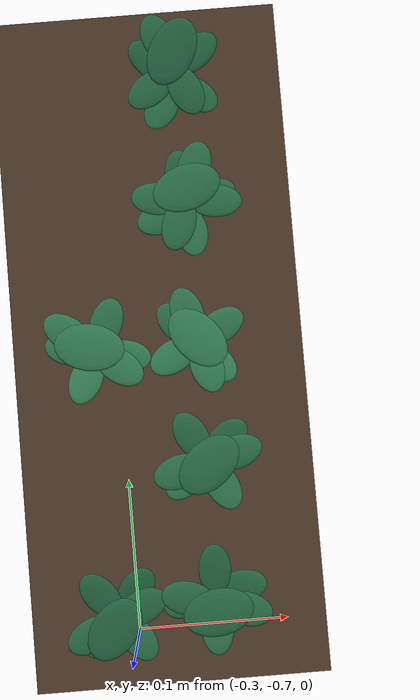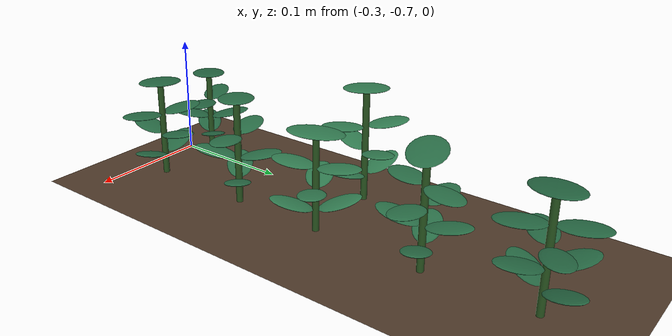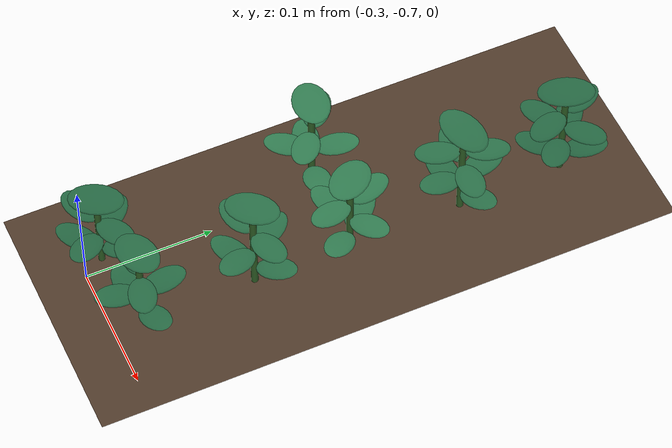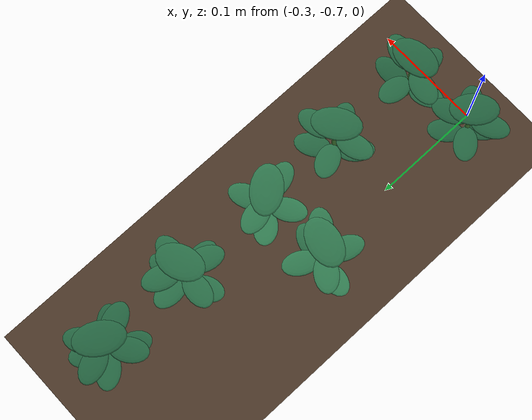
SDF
<sdf version="1.9">
 <world name="jim_field">
  <model name="ground_plane">
   <static>true</static>
   <link name="link">
    <collision name="collision">
     <geometry><plane><normal>0 0 1</normal><size>40 40</size></plane></geometry>
    </collision>
    <visual name="visual">
     <geometry><plane><normal>0 0 1</normal><size>40 40</size></plane></geometry>
     <material>
      <ambient>0.20 0.15 0.11 1</ambient>
      <diffuse>0.30 0.22 0.16 1</diffuse>
      <specular>0.01 0.01 0.01 1</specular>
     </material>
    </visual>
   </link>
  </model>
  <model name="field">
   <static>true</static>
   <pose>0.1837 -0.2516 0 0 0 0</pose>
   <model name="crop_0">
    <static>true</static>
    <pose>-0.4946 -0.4316 0 0 0 0</pose>
    <link name="link">
     <visual name="stem">
      <pose>0 0 0.0341 0 0 0</pose>
      <geometry><cylinder><radius>0.0025</radius><length>0.0683</length></cylinder></geometry>
      <material>
       <ambient>0.10 0.22 0.09 1</ambient>
       <diffuse>0.20 0.40 0.16 1</diffuse>
       <specular>0.05 0.06 0.05 1</specular>
      </material>
     </visual>
     <visual name="leaflet_0_0">
      <pose>0.0113 0.0136 0.0205 0 -0.300 0.8763</pose>
      <geometry><ellipsoid><radii>0.0170 0.0105 0.0016</radii></ellipsoid></geometry>
      <material>
       <ambient>0.073 0.205 0.114 1</ambient>
       <diffuse>0.136 0.390 0.247 1</diffuse>
       <specular>0.05 0.06 0.05 1</specular>
      </material>
     </visual>
     <visual name="leaflet_0_1">
      <pose>-0.0113 -0.0136 0.0205 0 -0.300 4.0179</pose>
      <geometry><ellipsoid><radii>0.0170 0.0105 0.0016</radii></ellipsoid></geometry>
      <material>
       <ambient>0.073 0.205 0.114 1</ambient>
       <diffuse>0.136 0.390 0.247 1</diffuse>
       <specular>0.05 0.06 0.05 1</specular>
      </material>
     </visual>
     <visual name="leaflet_1_0">
      <pose>-0.0108 0.0140 0.0346 0 -0.200 2.2263</pose>
      <geometry><ellipsoid><radii>0.0170 0.0105 0.0016</radii></ellipsoid></geometry>
      <material>
       <ambient>0.073 0.205 0.114 1</ambient>
       <diffuse>0.136 0.390 0.247 1</diffuse>
       <specular>0.05 0.06 0.05 1</specular>
      </material>
     </visual>
     <visual name="leaflet_1_1">
      <pose>0.0108 -0.0140 0.0346 0 -0.200 5.3679</pose>
      <geometry><ellipsoid><radii>0.0170 0.0105 0.0016</radii></ellipsoid></geometry>
      <material>
       <ambient>0.073 0.205 0.114 1</ambient>
       <diffuse>0.136 0.390 0.247 1</diffuse>
       <specular>0.05 0.06 0.05 1</specular>
      </material>
     </visual>
     <visual name="leaflet_2_0">
      <pose>-0.0160 -0.0074 0.0487 0 -0.100 3.5763</pose>
      <geometry><ellipsoid><radii>0.0170 0.0105 0.0016</radii></ellipsoid></geometry>
      <material>
       <ambient>0.073 0.205 0.114 1</ambient>
       <diffuse>0.136 0.390 0.247 1</diffuse>
       <specular>0.05 0.06 0.05 1</specular>
      </material>
     </visual>
     <visual name="leaflet_2_1">
      <pose>0.0160 0.0074 0.0487 0 -0.100 6.7179</pose>
      <geometry><ellipsoid><radii>0.0170 0.0105 0.0016</radii></ellipsoid></geometry>
      <material>
       <ambient>0.073 0.205 0.114 1</ambient>
       <diffuse>0.136 0.390 0.247 1</diffuse>
       <specular>0.05 0.06 0.05 1</specular>
      </material>
     </visual>
     <visual name="leaflet_terminal">
      <pose>0 0 0.0723 0 -0.12 0.8763</pose>
      <geometry><ellipsoid><radii>0.0215 0.0140 0.0018</radii></ellipsoid></geometry>
      <material>
       <ambient>0.073 0.205 0.114 1</ambient>
       <diffuse>0.136 0.390 0.247 1</diffuse>
       <specular>0.05 0.06 0.05 1</specular>
      </material>
     </visual>
    </link>
   </model>
   <model name="crop_1">
    <static>true</static>
    <pose>-0.4316 -0.4244 0 0 0 0</pose>
    <link name="link">
     <visual name="stem">
      <pose>0 0 0.0389 0 0 0</pose>
      <geometry><cylinder><radius>0.0026</radius><length>0.0777</length></cylinder></geometry>
      <material>
       <ambient>0.10 0.22 0.09 1</ambient>
       <diffuse>0.20 0.40 0.16 1</diffuse>
       <specular>0.05 0.06 0.05 1</specular>
      </material>
     </visual>
     <visual name="leaflet_0_0">
      <pose>0.0178 0.0034 0.0233 0 -0.300 0.1871</pose>
      <geometry><ellipsoid><radii>0.0170 0.0105 0.0016</radii></ellipsoid></geometry>
      <material>
       <ambient>0.077 0.211 0.119 1</ambient>
       <diffuse>0.143 0.402 0.255 1</diffuse>
       <specular>0.05 0.06 0.05 1</specular>
      </material>
     </visual>
     <visual name="leaflet_0_1">
      <pose>-0.0178 -0.0034 0.0233 0 -0.300 3.3287</pose>
      <geometry><ellipsoid><radii>0.0170 0.0105 0.0016</radii></ellipsoid></geometry>
      <material>
       <ambient>0.077 0.211 0.119 1</ambient>
       <diffuse>0.143 0.402 0.255 1</diffuse>
       <specular>0.05 0.06 0.05 1</specular>
      </material>
     </visual>
     <visual name="leaflet_1_0">
      <pose>0.0006 0.0181 0.0394 0 -0.200 1.5371</pose>
      <geometry><ellipsoid><radii>0.0170 0.0105 0.0016</radii></ellipsoid></geometry>
      <material>
       <ambient>0.077 0.211 0.119 1</ambient>
       <diffuse>0.143 0.402 0.255 1</diffuse>
       <specular>0.05 0.06 0.05 1</specular>
      </material>
     </visual>
     <visual name="leaflet_1_1">
      <pose>-0.0006 -0.0181 0.0394 0 -0.200 4.6787</pose>
      <geometry><ellipsoid><radii>0.0170 0.0105 0.0016</radii></ellipsoid></geometry>
      <material>
       <ambient>0.077 0.211 0.119 1</ambient>
       <diffuse>0.143 0.402 0.255 1</diffuse>
       <specular>0.05 0.06 0.05 1</specular>
      </material>
     </visual>
     <visual name="leaflet_2_0">
      <pose>-0.0176 0.0046 0.0554 0 -0.100 2.8871</pose>
      <geometry><ellipsoid><radii>0.0170 0.0105 0.0016</radii></ellipsoid></geometry>
      <material>
       <ambient>0.077 0.211 0.119 1</ambient>
       <diffuse>0.143 0.402 0.255 1</diffuse>
       <specular>0.05 0.06 0.05 1</specular>
      </material>
     </visual>
     <visual name="leaflet_2_1">
      <pose>0.0176 -0.0046 0.0554 0 -0.100 6.0287</pose>
      <geometry><ellipsoid><radii>0.0170 0.0105 0.0016</radii></ellipsoid></geometry>
      <material>
       <ambient>0.077 0.211 0.119 1</ambient>
       <diffuse>0.143 0.402 0.255 1</diffuse>
       <specular>0.05 0.06 0.05 1</specular>
      </material>
     </visual>
     <visual name="leaflet_terminal">
      <pose>0 0 0.0817 0 -0.12 0.1871</pose>
      <geometry><ellipsoid><radii>0.0215 0.0140 0.0018</radii></ellipsoid></geometry>
      <material>
       <ambient>0.077 0.211 0.119 1</ambient>
       <diffuse>0.143 0.402 0.255 1</diffuse>
       <specular>0.05 0.06 0.05 1</specular>
      </material>
     </visual>
    </link>
   </model>
   <model name="crop_18">
    <static>true</static>
    <pose>-0.4302 -0.3365 0 0 0 0</pose>
    <link name="link">
     <visual name="stem">
      <pose>0 0 0.0415 0 0 0</pose>
      <geometry><cylinder><radius>0.0027</radius><length>0.0831</length></cylinder></geometry>
      <material>
       <ambient>0.10 0.22 0.09 1</ambient>
       <diffuse>0.20 0.40 0.16 1</diffuse>
       <specular>0.05 0.06 0.05 1</specular>
      </material>
     </visual>
     <visual name="leaflet_0_0">
      <pose>0.0141 0.0119 0.0249 0 -0.300 0.7005</pose>
      <geometry><ellipsoid><radii>0.0170 0.0105 0.0016</radii></ellipsoid></geometry>
      <material>
       <ambient>0.083 0.222 0.127 1</ambient>
       <diffuse>0.156 0.423 0.270 1</diffuse>
       <specular>0.05 0.06 0.05 1</specular>
      </material>
     </visual>
     <visual name="leaflet_0_1">
      <pose>-0.0141 -0.0119 0.0249 0 -0.300 3.8421</pose>
      <geometry><ellipsoid><radii>0.0170 0.0105 0.0016</radii></ellipsoid></geometry>
      <material>
       <ambient>0.083 0.222 0.127 1</ambient>
       <diffuse>0.156 0.423 0.270 1</diffuse>
       <specular>0.05 0.06 0.05 1</specular>
      </material>
     </visual>
     <visual name="leaflet_1_0">
      <pose>-0.0085 0.0163 0.0421 0 -0.200 2.0505</pose>
      <geometry><ellipsoid><radii>0.0170 0.0105 0.0016</radii></ellipsoid></geometry>
      <material>
       <ambient>0.083 0.222 0.127 1</ambient>
       <diffuse>0.156 0.423 0.270 1</diffuse>
       <specular>0.05 0.06 0.05 1</specular>
      </material>
     </visual>
     <visual name="leaflet_1_1">
      <pose>0.0085 -0.0163 0.0421 0 -0.200 5.1921</pose>
      <geometry><ellipsoid><radii>0.0170 0.0105 0.0016</radii></ellipsoid></geometry>
      <material>
       <ambient>0.083 0.222 0.127 1</ambient>
       <diffuse>0.156 0.423 0.270 1</diffuse>
       <specular>0.05 0.06 0.05 1</specular>
      </material>
     </visual>
     <visual name="leaflet_2_0">
      <pose>-0.0178 -0.0047 0.0592 0 -0.100 3.4005</pose>
      <geometry><ellipsoid><radii>0.0170 0.0105 0.0016</radii></ellipsoid></geometry>
      <material>
       <ambient>0.083 0.222 0.127 1</ambient>
       <diffuse>0.156 0.423 0.270 1</diffuse>
       <specular>0.05 0.06 0.05 1</specular>
      </material>
     </visual>
     <visual name="leaflet_2_1">
      <pose>0.0178 0.0047 0.0592 0 -0.100 6.5421</pose>
      <geometry><ellipsoid><radii>0.0170 0.0105 0.0016</radii></ellipsoid></geometry>
      <material>
       <ambient>0.083 0.222 0.127 1</ambient>
       <diffuse>0.156 0.423 0.270 1</diffuse>
       <specular>0.05 0.06 0.05 1</specular>
      </material>
     </visual>
     <visual name="leaflet_terminal">
      <pose>0 0 0.0871 0 -0.12 0.7005</pose>
      <geometry><ellipsoid><radii>0.0215 0.0140 0.0018</radii></ellipsoid></geometry>
      <material>
       <ambient>0.083 0.222 0.127 1</ambient>
       <diffuse>0.156 0.423 0.270 1</diffuse>
       <specular>0.05 0.06 0.05 1</specular>
      </material>
     </visual>
    </link>
   </model>
   <model name="crop_34">
    <static>true</static>
    <pose>-0.4955 -0.2613 0 0 0 0</pose>
    <link name="link">
     <visual name="stem">
      <pose>0 0 0.0450 0 0 0</pose>
      <geometry><cylinder><radius>0.0027</radius><length>0.0900</length></cylinder></geometry>
      <material>
       <ambient>0.10 0.22 0.09 1</ambient>
       <diffuse>0.20 0.40 0.16 1</diffuse>
       <specular>0.05 0.06 0.05 1</specular>
      </material>
     </visual>
     <visual name="leaflet_0_0">
      <pose>0.0184 -0.0037 0.0270 0 -0.300 6.0853</pose>
      <geometry><ellipsoid><radii>0.0170 0.0105 0.0016</radii></ellipsoid></geometry>
      <material>
       <ambient>0.098 0.246 0.147 1</ambient>
       <diffuse>0.186 0.473 0.305 1</diffuse>
       <specular>0.05 0.06 0.05 1</specular>
      </material>
     </visual>
     <visual name="leaflet_0_1">
      <pose>-0.0184 0.0037 0.0270 0 -0.300 9.2269</pose>
      <geometry><ellipsoid><radii>0.0170 0.0105 0.0016</radii></ellipsoid></geometry>
      <material>
       <ambient>0.098 0.246 0.147 1</ambient>
       <diffuse>0.186 0.473 0.305 1</diffuse>
       <specular>0.05 0.06 0.05 1</specular>
      </material>
     </visual>
     <visual name="leaflet_1_0">
      <pose>0.0076 0.0172 0.0456 0 -0.200 7.4353</pose>
      <geometry><ellipsoid><radii>0.0170 0.0105 0.0016</radii></ellipsoid></geometry>
      <material>
       <ambient>0.098 0.246 0.147 1</ambient>
       <diffuse>0.186 0.473 0.305 1</diffuse>
       <specular>0.05 0.06 0.05 1</specular>
      </material>
     </visual>
     <visual name="leaflet_1_1">
      <pose>-0.0076 -0.0172 0.0456 0 -0.200 10.5769</pose>
      <geometry><ellipsoid><radii>0.0170 0.0105 0.0016</radii></ellipsoid></geometry>
      <material>
       <ambient>0.098 0.246 0.147 1</ambient>
       <diffuse>0.186 0.473 0.305 1</diffuse>
       <specular>0.05 0.06 0.05 1</specular>
      </material>
     </visual>
     <visual name="leaflet_2_0">
      <pose>-0.0151 0.0112 0.0642 0 -0.100 8.7853</pose>
      <geometry><ellipsoid><radii>0.0170 0.0105 0.0016</radii></ellipsoid></geometry>
      <material>
       <ambient>0.098 0.246 0.147 1</ambient>
       <diffuse>0.186 0.473 0.305 1</diffuse>
       <specular>0.05 0.06 0.05 1</specular>
      </material>
     </visual>
     <visual name="leaflet_2_1">
      <pose>0.0151 -0.0112 0.0642 0 -0.100 11.9269</pose>
      <geometry><ellipsoid><radii>0.0170 0.0105 0.0016</radii></ellipsoid></geometry>
      <material>
       <ambient>0.098 0.246 0.147 1</ambient>
       <diffuse>0.186 0.473 0.305 1</diffuse>
       <specular>0.05 0.06 0.05 1</specular>
      </material>
     </visual>
     <visual name="leaflet_terminal">
      <pose>0 0 0.0940 0 -0.12 6.0853</pose>
      <geometry><ellipsoid><radii>0.0215 0.0140 0.0018</radii></ellipsoid></geometry>
      <material>
       <ambient>0.098 0.246 0.147 1</ambient>
       <diffuse>0.186 0.473 0.305 1</diffuse>
       <specular>0.05 0.06 0.05 1</specular>
      </material>
     </visual>
    </link>
   </model>
   <model name="crop_35">
    <static>true</static>
    <pose>-0.4305 -0.2597 0 0 0 0</pose>
    <link name="link">
     <visual name="stem">
      <pose>0 0 0.0373 0 0 0</pose>
      <geometry><cylinder><radius>0.0026</radius><length>0.0746</length></cylinder></geometry>
      <material>
       <ambient>0.10 0.22 0.09 1</ambient>
       <diffuse>0.20 0.40 0.16 1</diffuse>
       <specular>0.05 0.06 0.05 1</specular>
      </material>
     </visual>
     <visual name="leaflet_0_0">
      <pose>0.0118 -0.0135 0.0224 0 -0.300 5.4300</pose>
      <geometry><ellipsoid><radii>0.0170 0.0105 0.0016</radii></ellipsoid></geometry>
      <material>
       <ambient>0.097 0.245 0.146 1</ambient>
       <diffuse>0.184 0.470 0.303 1</diffuse>
       <specular>0.05 0.06 0.05 1</specular>
      </material>
     </visual>
     <visual name="leaflet_0_1">
      <pose>-0.0118 0.0135 0.0224 0 -0.300 8.5716</pose>
      <geometry><ellipsoid><radii>0.0170 0.0105 0.0016</radii></ellipsoid></geometry>
      <material>
       <ambient>0.097 0.245 0.146 1</ambient>
       <diffuse>0.184 0.470 0.303 1</diffuse>
       <specular>0.05 0.06 0.05 1</specular>
      </material>
     </visual>
     <visual name="leaflet_1_0">
      <pose>0.0158 0.0086 0.0378 0 -0.200 6.7800</pose>
      <geometry><ellipsoid><radii>0.0170 0.0105 0.0016</radii></ellipsoid></geometry>
      <material>
       <ambient>0.097 0.245 0.146 1</ambient>
       <diffuse>0.184 0.470 0.303 1</diffuse>
       <specular>0.05 0.06 0.05 1</specular>
      </material>
     </visual>
     <visual name="leaflet_1_1">
      <pose>-0.0158 -0.0086 0.0378 0 -0.200 9.9216</pose>
      <geometry><ellipsoid><radii>0.0170 0.0105 0.0016</radii></ellipsoid></geometry>
      <material>
       <ambient>0.097 0.245 0.146 1</ambient>
       <diffuse>0.184 0.470 0.303 1</diffuse>
       <specular>0.05 0.06 0.05 1</specular>
      </material>
     </visual>
     <visual name="leaflet_2_0">
      <pose>-0.0049 0.0173 0.0532 0 -0.100 8.1300</pose>
      <geometry><ellipsoid><radii>0.0170 0.0105 0.0016</radii></ellipsoid></geometry>
      <material>
       <ambient>0.097 0.245 0.146 1</ambient>
       <diffuse>0.184 0.470 0.303 1</diffuse>
       <specular>0.05 0.06 0.05 1</specular>
      </material>
     </visual>
     <visual name="leaflet_2_1">
      <pose>0.0049 -0.0173 0.0532 0 -0.100 11.2716</pose>
      <geometry><ellipsoid><radii>0.0170 0.0105 0.0016</radii></ellipsoid></geometry>
      <material>
       <ambient>0.097 0.245 0.146 1</ambient>
       <diffuse>0.184 0.470 0.303 1</diffuse>
       <specular>0.05 0.06 0.05 1</specular>
      </material>
     </visual>
     <visual name="leaflet_terminal">
      <pose>0 0 0.0786 0 -0.12 5.4300</pose>
      <geometry><ellipsoid><radii>0.0215 0.0140 0.0018</radii></ellipsoid></geometry>
      <material>
       <ambient>0.097 0.245 0.146 1</ambient>
       <diffuse>0.184 0.470 0.303 1</diffuse>
       <specular>0.05 0.06 0.05 1</specular>
      </material>
     </visual>
    </link>
   </model>
   <model name="crop_52">
    <static>true</static>
    <pose>-0.4300 -0.1694 0 0 0 0</pose>
    <link name="link">
     <visual name="stem">
      <pose>0 0 0.0425 0 0 0</pose>
      <geometry><cylinder><radius>0.0027</radius><length>0.0850</length></cylinder></geometry>
      <material>
       <ambient>0.10 0.22 0.09 1</ambient>
       <diffuse>0.20 0.40 0.16 1</diffuse>
       <specular>0.05 0.06 0.05 1</specular>
      </material>
     </visual>
     <visual name="leaflet_0_0">
      <pose>-0.0175 -0.0060 0.0255 0 -0.300 3.4699</pose>
      <geometry><ellipsoid><radii>0.0170 0.0105 0.0016</radii></ellipsoid></geometry>
      <material>
       <ambient>0.083 0.221 0.127 1</ambient>
       <diffuse>0.156 0.423 0.270 1</diffuse>
       <specular>0.05 0.06 0.05 1</specular>
      </material>
     </visual>
     <visual name="leaflet_0_1">
      <pose>0.0175 0.0060 0.0255 0 -0.300 6.6115</pose>
      <geometry><ellipsoid><radii>0.0170 0.0105 0.0016</radii></ellipsoid></geometry>
      <material>
       <ambient>0.083 0.221 0.127 1</ambient>
       <diffuse>0.156 0.423 0.270 1</diffuse>
       <specular>0.05 0.06 0.05 1</specular>
      </material>
     </visual>
     <visual name="leaflet_1_0">
      <pose>0.0020 -0.0184 0.0387 0 -0.200 4.8199</pose>
      <geometry><ellipsoid><radii>0.0170 0.0105 0.0016</radii></ellipsoid></geometry>
      <material>
       <ambient>0.083 0.221 0.127 1</ambient>
       <diffuse>0.156 0.423 0.270 1</diffuse>
       <specular>0.05 0.06 0.05 1</specular>
      </material>
     </visual>
     <visual name="leaflet_1_1">
      <pose>-0.0020 0.0184 0.0387 0 -0.200 7.9615</pose>
      <geometry><ellipsoid><radii>0.0170 0.0105 0.0016</radii></ellipsoid></geometry>
      <material>
       <ambient>0.083 0.221 0.127 1</ambient>
       <diffuse>0.156 0.423 0.270 1</diffuse>
       <specular>0.05 0.06 0.05 1</specular>
      </material>
     </visual>
     <visual name="leaflet_2_0">
      <pose>0.0184 -0.0021 0.0519 0 -0.100 6.1699</pose>
      <geometry><ellipsoid><radii>0.0170 0.0105 0.0016</radii></ellipsoid></geometry>
      <material>
       <ambient>0.083 0.221 0.127 1</ambient>
       <diffuse>0.156 0.423 0.270 1</diffuse>
       <specular>0.05 0.06 0.05 1</specular>
      </material>
     </visual>
     <visual name="leaflet_2_1">
      <pose>-0.0184 0.0021 0.0519 0 -0.100 9.3115</pose>
      <geometry><ellipsoid><radii>0.0170 0.0105 0.0016</radii></ellipsoid></geometry>
      <material>
       <ambient>0.083 0.221 0.127 1</ambient>
       <diffuse>0.156 0.423 0.270 1</diffuse>
       <specular>0.05 0.06 0.05 1</specular>
      </material>
     </visual>
     <visual name="leaflet_3_0">
      <pose>0.0061 0.0175 0.0651 0 0.000 7.5199</pose>
      <geometry><ellipsoid><radii>0.0170 0.0105 0.0016</radii></ellipsoid></geometry>
      <material>
       <ambient>0.083 0.221 0.127 1</ambient>
       <diffuse>0.156 0.423 0.270 1</diffuse>
       <specular>0.05 0.06 0.05 1</specular>
      </material>
     </visual>
     <visual name="leaflet_3_1">
      <pose>-0.0061 -0.0175 0.0651 0 0.000 10.6615</pose>
      <geometry><ellipsoid><radii>0.0170 0.0105 0.0016</radii></ellipsoid></geometry>
      <material>
       <ambient>0.083 0.221 0.127 1</ambient>
       <diffuse>0.156 0.423 0.270 1</diffuse>
       <specular>0.05 0.06 0.05 1</specular>
      </material>
     </visual>
     <visual name="leaflet_terminal">
      <pose>0 0 0.0890 0 -0.12 3.4699</pose>
      <geometry><ellipsoid><radii>0.0215 0.0140 0.0018</radii></ellipsoid></geometry>
      <material>
       <ambient>0.083 0.221 0.127 1</ambient>
       <diffuse>0.156 0.423 0.270 1</diffuse>
       <specular>0.05 0.06 0.05 1</specular>
      </material>
     </visual>
    </link>
   </model>
   <model name="crop_69">
    <static>true</static>
    <pose>-0.4322 -0.0848 0 0 0 0</pose>
    <link name="link">
     <visual name="stem">
      <pose>0 0 0.0419 0 0 0</pose>
      <geometry><cylinder><radius>0.0027</radius><length>0.0838</length></cylinder></geometry>
      <material>
       <ambient>0.10 0.22 0.09 1</ambient>
       <diffuse>0.20 0.40 0.16 1</diffuse>
       <specular>0.05 0.06 0.05 1</specular>
      </material>
     </visual>
     <visual name="leaflet_0_0">
      <pose>0.0089 0.0162 0.0251 0 -0.300 1.0657</pose>
      <geometry><ellipsoid><radii>0.0170 0.0105 0.0016</radii></ellipsoid></geometry>
      <material>
       <ambient>0.073 0.204 0.113 1</ambient>
       <diffuse>0.135 0.388 0.246 1</diffuse>
       <specular>0.05 0.06 0.05 1</specular>
      </material>
     </visual>
     <visual name="leaflet_0_1">
      <pose>-0.0089 -0.0162 0.0251 0 -0.300 4.2073</pose>
      <geometry><ellipsoid><radii>0.0170 0.0105 0.0016</radii></ellipsoid></geometry>
      <material>
       <ambient>0.073 0.204 0.113 1</ambient>
       <diffuse>0.135 0.388 0.246 1</diffuse>
       <specular>0.05 0.06 0.05 1</specular>
      </material>
     </visual>
     <visual name="leaflet_1_0">
      <pose>-0.0138 0.0123 0.0381 0 -0.200 2.4157</pose>
      <geometry><ellipsoid><radii>0.0170 0.0105 0.0016</radii></ellipsoid></geometry>
      <material>
       <ambient>0.073 0.204 0.113 1</ambient>
       <diffuse>0.135 0.388 0.246 1</diffuse>
       <specular>0.05 0.06 0.05 1</specular>
      </material>
     </visual>
     <visual name="leaflet_1_1">
      <pose>0.0138 -0.0123 0.0381 0 -0.200 5.5573</pose>
      <geometry><ellipsoid><radii>0.0170 0.0105 0.0016</radii></ellipsoid></geometry>
      <material>
       <ambient>0.073 0.204 0.113 1</ambient>
       <diffuse>0.135 0.388 0.246 1</diffuse>
       <specular>0.05 0.06 0.05 1</specular>
      </material>
     </visual>
     <visual name="leaflet_2_0">
      <pose>-0.0150 -0.0108 0.0511 0 -0.100 3.7657</pose>
      <geometry><ellipsoid><radii>0.0170 0.0105 0.0016</radii></ellipsoid></geometry>
      <material>
       <ambient>0.073 0.204 0.113 1</ambient>
       <diffuse>0.135 0.388 0.246 1</diffuse>
       <specular>0.05 0.06 0.05 1</specular>
      </material>
     </visual>
     <visual name="leaflet_2_1">
      <pose>0.0150 0.0108 0.0511 0 -0.100 6.9073</pose>
      <geometry><ellipsoid><radii>0.0170 0.0105 0.0016</radii></ellipsoid></geometry>
      <material>
       <ambient>0.073 0.204 0.113 1</ambient>
       <diffuse>0.135 0.388 0.246 1</diffuse>
       <specular>0.05 0.06 0.05 1</specular>
      </material>
     </visual>
     <visual name="leaflet_3_0">
      <pose>0.0072 -0.0170 0.0641 0 0.000 5.1157</pose>
      <geometry><ellipsoid><radii>0.0170 0.0105 0.0016</radii></ellipsoid></geometry>
      <material>
       <ambient>0.073 0.204 0.113 1</ambient>
       <diffuse>0.135 0.388 0.246 1</diffuse>
       <specular>0.05 0.06 0.05 1</specular>
      </material>
     </visual>
     <visual name="leaflet_3_1">
      <pose>-0.0072 0.0170 0.0641 0 0.000 8.2573</pose>
      <geometry><ellipsoid><radii>0.0170 0.0105 0.0016</radii></ellipsoid></geometry>
      <material>
       <ambient>0.073 0.204 0.113 1</ambient>
       <diffuse>0.135 0.388 0.246 1</diffuse>
       <specular>0.05 0.06 0.05 1</specular>
      </material>
     </visual>
     <visual name="leaflet_terminal">
      <pose>0 0 0.0878 0 -0.12 1.0657</pose>
      <geometry><ellipsoid><radii>0.0215 0.0140 0.0018</radii></ellipsoid></geometry>
      <material>
       <ambient>0.073 0.204 0.113 1</ambient>
       <diffuse>0.135 0.388 0.246 1</diffuse>
       <specular>0.05 0.06 0.05 1</specular>
      </material>
     </visual>
    </link>
   </model>
  </model>
 </world>
</sdf>
